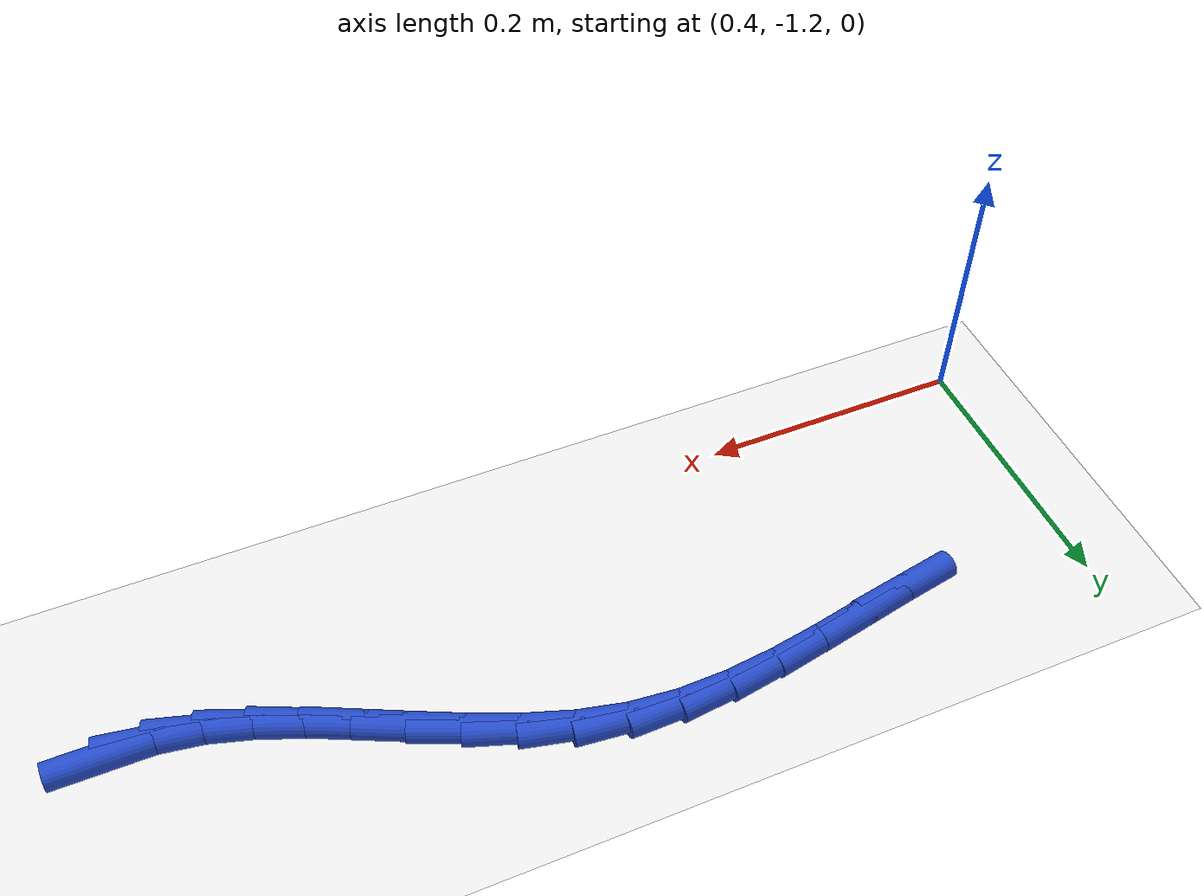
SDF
<sdf version="1.6">
 <world name="default">
  <model name="ground_plane">
   <static>1</static>
   <link name="link">
    <collision name="collision">
     <geometry><plane><normal>0 0 1</normal><size>100 100</size></plane></geometry>
     <surface><friction><ode><mu>100</mu><mu2>50</mu2></ode></friction></surface>
    </collision>
    <visual name="visual">
     <cast_shadows>0</cast_shadows>
     <geometry><plane><normal>0 0 1</normal><size>100 100</size></plane></geometry>
     <material>
      <script><uri>file://media/materials/scripts/gazebo.material</uri><name>Gazebo/WhiteGlow</name></script>
     </material>
    </visual>
   </link>
  </model>
  <model name="line">
   <link name="link_157">
    <pose>1.0757948666286643 -1.113459801690119 0.01 0 1.57 -0.0016516446255472605</pose>
    <collision name="collision">
     <geometry><cylinder><radius>0.01</radius><length>0.08</length></cylinder></geometry>
    </collision>
    <visual name="visual">
     <material>
      <script><name>Gazebo/Blue</name><uri>file://media/materials/scripts/gazebo.material</uri></script>
     </material>
     <geometry><cylinder><radius>0.01</radius><length>0.08</length></cylinder></geometry>
    </visual>
   </link>
   <link name="link_158">
    <pose>1.0440686008013536 -1.1134074011260282 0.01 0 1.57 -0.15925146060054537</pose>
    <collision name="collision">
     <geometry><cylinder><radius>0.01</radius><length>0.08</length></cylinder></geometry>
    </collision>
    <visual name="visual">
     <material>
      <script><name>Gazebo/Blue</name><uri>file://media/materials/scripts/gazebo.material</uri></script>
     </material>
     <geometry><cylinder><radius>0.01</radius><length>0.08</length></cylinder></geometry>
    </visual>
   </link>
   <link name="link_159">
    <pose>1.0126254800594279 -1.1083572737258482 0.01 0 1.57 -0.2871201589611145</pose>
    <collision name="collision">
     <geometry><cylinder><radius>0.01</radius><length>0.08</length></cylinder></geometry>
    </collision>
    <visual name="visual">
     <material>
      <script><name>Gazebo/Blue</name><uri>file://media/materials/scripts/gazebo.material</uri></script>
     </material>
     <geometry><cylinder><radius>0.01</radius><length>0.08</length></cylinder></geometry>
    </visual>
   </link>
   <link name="link_160">
    <pose>0.9813287262262652 -1.0991159939349737 0.01 0 1.57 -0.3756083433316997</pose>
    <collision name="collision">
     <geometry><cylinder><radius>0.01</radius><length>0.08</length></cylinder></geometry>
    </collision>
    <visual name="visual">
     <material>
      <script><name>Gazebo/Blue</name><uri>file://media/materials/scripts/gazebo.material</uri></script>
     </material>
     <geometry><cylinder><radius>0.01</radius><length>0.08</length></cylinder></geometry>
    </visual>
   </link>
   <link name="link_161">
    <pose>0.9500276023617631 -1.0867730422483965 0.01 0 1.57 -0.42812444840170727</pose>
    <collision name="collision">
     <geometry><cylinder><radius>0.01</radius><length>0.08</length></cylinder></geometry>
    </collision>
    <visual name="visual">
     <material>
      <script><name>Gazebo/Blue</name><uri>file://media/materials/scripts/gazebo.material</uri></script>
     </material>
     <geometry><cylinder><radius>0.01</radius><length>0.08</length></cylinder></geometry>
    </visual>
   </link>
   <link name="link_162">
    <pose>0.9185713715258201 -1.0724178991611109 0.01 0 1.57 -0.44833997112599056</pose>
    <collision name="collision">
     <geometry><cylinder><radius>0.01</radius><length>0.08</length></cylinder></geometry>
    </collision>
    <visual name="visual">
     <material>
      <script><name>Gazebo/Blue</name><uri>file://media/materials/scripts/gazebo.material</uri></script>
     </material>
     <geometry><cylinder><radius>0.01</radius><length>0.08</length></cylinder></geometry>
    </visual>
   </link>
   <link name="link_163">
    <pose>0.8868092967783338 -1.0571400451681083 0.01 0 1.57 -0.43855511353591214</pose>
    <collision name="collision">
     <geometry><cylinder><radius>0.01</radius><length>0.08</length></cylinder></geometry>
    </collision>
    <visual name="visual">
     <material>
      <script><name>Gazebo/Blue</name><uri>file://media/materials/scripts/gazebo.material</uri></script>
     </material>
     <geometry><cylinder><radius>0.01</radius><length>0.08</length></cylinder></geometry>
    </visual>
   </link>
   <link name="link_164">
    <pose>0.8545906411792018 -1.0420289607643825 0.01 0 1.57 -0.3993856682888181</pose>
    <collision name="collision">
     <geometry><cylinder><radius>0.01</radius><length>0.08</length></cylinder></geometry>
    </collision>
    <visual name="visual">
     <material>
      <script><name>Gazebo/Blue</name><uri>file://media/materials/scripts/gazebo.material</uri></script>
     </material>
     <geometry><cylinder><radius>0.01</radius><length>0.08</length></cylinder></geometry>
    </visual>
   </link>
   <link name="link_165">
    <pose>0.8217646677883234 -1.0281741264449265 0.01 0 1.57 -0.33015293205773366</pose>
    <collision name="collision">
     <geometry><cylinder><radius>0.01</radius><length>0.08</length></cylinder></geometry>
    </collision>
    <visual name="visual">
     <material>
      <script><name>Gazebo/Blue</name><uri>file://media/materials/scripts/gazebo.material</uri></script>
     </material>
     <geometry><cylinder><radius>0.01</radius><length>0.08</length></cylinder></geometry>
    </visual>
   </link>
   <link name="link_166">
    <pose>0.7881806396655959 -1.0166650227047327 0.01 0 1.57 -0.22993480141045025</pose>
    <collision name="collision">
     <geometry><cylinder><radius>0.01</radius><length>0.08</length></cylinder></geometry>
    </collision>
    <visual name="visual">
     <material>
      <script><name>Gazebo/Blue</name><uri>file://media/materials/scripts/gazebo.material</uri></script>
     </material>
     <geometry><cylinder><radius>0.01</radius><length>0.08</length></cylinder></geometry>
    </visual>
   </link>
   <link name="link_167">
    <pose>0.7536878198709177 -1.0085911300387949 0.01 0 1.57 -0.10243212831407297</pose>
    <collision name="collision">
     <geometry><cylinder><radius>0.01</radius><length>0.08</length></cylinder></geometry>
    </collision>
    <visual name="visual">
     <material>
      <script><name>Gazebo/Blue</name><uri>file://media/materials/scripts/gazebo.material</uri></script>
     </material>
     <geometry><cylinder><radius>0.01</radius><length>0.08</length></cylinder></geometry>
    </visual>
   </link>
   <link name="link_168">
    <pose>0.7181619986208797 -1.004939363756411 0.01 0 1.57 0.014908757818842426</pose>
    <collision name="collision">
     <geometry><cylinder><radius>0.01</radius><length>0.08</length></cylinder></geometry>
    </collision>
    <visual name="visual">
     <material>
      <script><name>Gazebo/Blue</name><uri>file://media/materials/scripts/gazebo.material</uri></script>
     </material>
     <geometry><cylinder><radius>0.01</radius><length>0.08</length></cylinder></geometry>
    </visual>
   </link>
   <link name="link_169">
    <pose>0.6817932157969766 -1.0054816173080512 0.01 0 1.57 0.10052248335871754</pose>
    <collision name="collision">
     <geometry><cylinder><radius>0.01</radius><length>0.08</length></cylinder></geometry>
    </collision>
    <visual name="visual">
     <material>
      <script><name>Gazebo/Blue</name><uri>file://media/materials/scripts/gazebo.material</uri></script>
     </material>
     <geometry><cylinder><radius>0.01</radius><length>0.08</length></cylinder></geometry>
    </visual>
   </link>
   <link name="link_170">
    <pose>0.6449770762797976 -1.0091949830824611 0.01 0 1.57 0.15732009699621377</pose>
    <collision name="collision">
     <geometry><cylinder><radius>0.01</radius><length>0.08</length></cylinder></geometry>
    </collision>
    <visual name="visual">
     <material>
      <script><name>Gazebo/Blue</name><uri>file://media/materials/scripts/gazebo.material</uri></script>
     </material>
     <geometry><cylinder><radius>0.01</radius><length>0.08</length></cylinder></geometry>
    </visual>
   </link>
   <link name="link_171">
    <pose>0.6081127401389893 -1.015042807606747 0.01 0 1.57 0.1879757540381664</pose>
    <collision name="collision">
     <geometry><cylinder><radius>0.01</radius><length>0.08</length></cylinder></geometry>
    </collision>
    <visual name="visual">
     <material>
      <script><name>Gazebo/Blue</name><uri>file://media/materials/scripts/gazebo.material</uri></script>
     </material>
     <geometry><cylinder><radius>0.01</radius><length>0.08</length></cylinder></geometry>
    </visual>
   </link>
   <link name="link_172">
    <pose>0.5715993674441964 -1.0219884374080144 0.01 0 1.57 0.1934706565855602</pose>
    <collision name="collision">
     <geometry><cylinder><radius>0.01</radius><length>0.08</length></cylinder></geometry>
    </collision>
    <visual name="visual">
     <material>
      <script><name>Gazebo/Blue</name><uri>file://media/materials/scripts/gazebo.material</uri></script>
     </material>
     <geometry><cylinder><radius>0.01</radius><length>0.08</length></cylinder></geometry>
    </visual>
   </link>
   <link name="link_173">
    <pose>0.5358361182650634 -1.0289952190133684 0.01 0 1.57 0.17251215232975053</pose>
    <collision name="collision">
     <geometry><cylinder><radius>0.01</radius><length>0.08</length></cylinder></geometry>
    </collision>
    <visual name="visual">
     <material>
      <script><name>Gazebo/Blue</name><uri>file://media/materials/scripts/gazebo.material</uri></script>
     </material>
     <geometry><cylinder><radius>0.01</radius><length>0.08</length></cylinder></geometry>
    </visual>
   </link>
  </model>
 </world>
</sdf>
